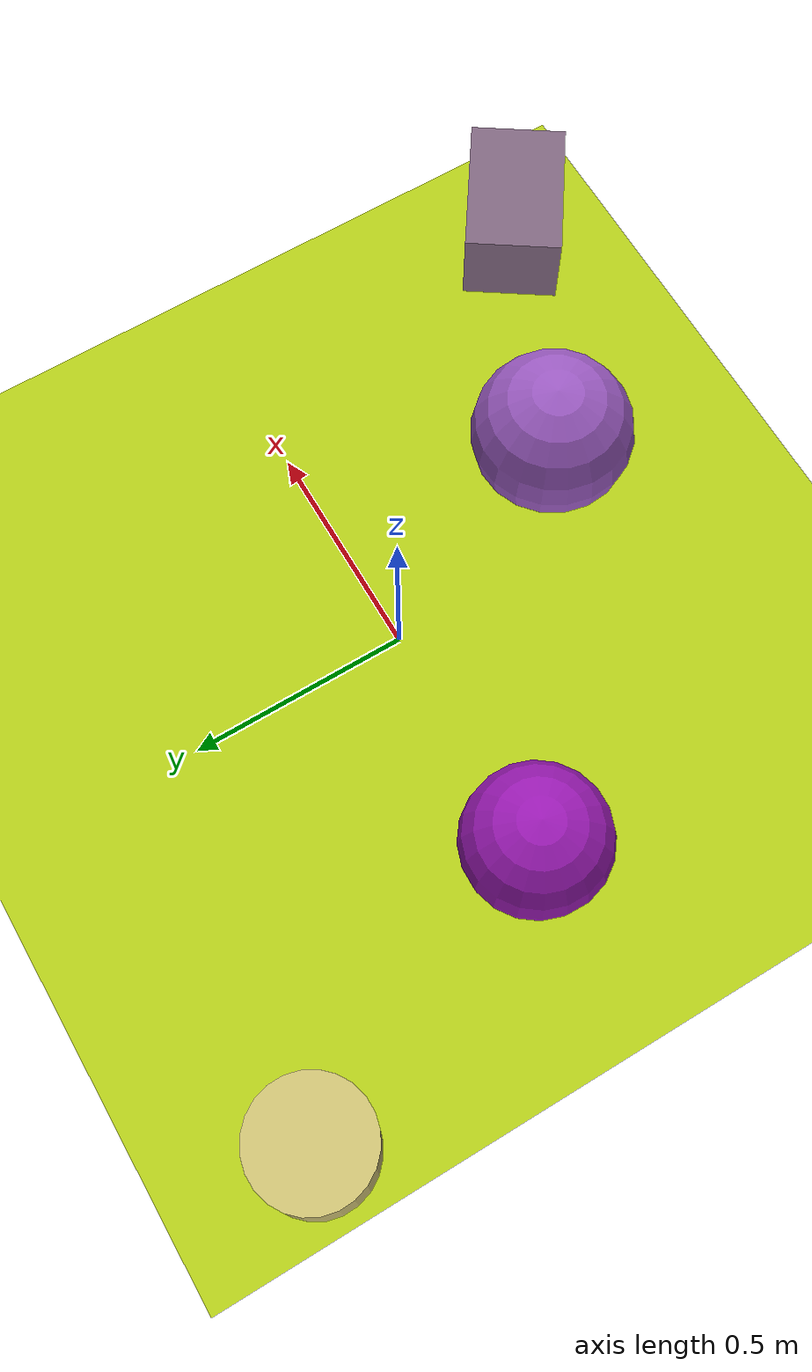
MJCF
<mujoco>
   <asset>
<texture type="skybox" builtin="gradient" rgb1="0.9 0.1 0.5" rgb2="0.5 0.6 0.0" width="256" height="256"/>
<texture name="checker_0" builtin="checker" rgb1="1.0 0.9 0.6" rgb2="0.6 0.6 0.3" width="200" height="200"/>
<texture name="checker_1" builtin="checker" rgb1="0.9 0.4 0.5" rgb2="0.1 0.4 0.5" width="200" height="200"/>
<texture name="flat_2" builtin="flat" rgb1="0.6 0.1 0.7" rgb2="0.6 0.1 0.7"  width="200" height="200"/>
<texture name="checker_3" builtin="checker" rgb1="0.4 0.7 0.8" rgb2="0.8 0.0 0.7" width="200" height="200"/><material name="checker_0_mat" reflectance="0" texrepeat="3 3" texture="checker_0" texuniform="false" />
<material name="checker_1_mat" reflectance="0" texrepeat="3 3" texture="checker_1" texuniform="false" />
<material name="flat_2_mat" reflectance="0" texture="flat_2" texuniform="true"/>
<material name="checker_3_mat" reflectance="0" texrepeat="5 5" texture="checker_3" texuniform="false" />
   </asset>

   <worldbody>
      <light diffuse=".9 .9 .9" pos="0 0 3" dir="0 0 -1"/>
     <geom type="plane" size="1 1 0.1" rgba="0.7 0.8 0.1 1"/>
<geom type="cylinder" pos="-0.84 0.68 0.12" size="0.13 0.12 0.12" material="checker_0_mat" euler="0 0 24" />
<geom type="box" pos="0.76 -0.76 0.1" size="0.11 0.16 0.1" material="checker_1_mat" euler="0 0 56" />
<geom type="sphere" pos="-0.56 0.01 0.16" size="0.16 0.16 0.16" material="flat_2_mat" euler="0 0 80" />
<geom type="sphere" pos="0.19 -0.5 0.18" size="0.18 0.18 0.18" material="checker_3_mat" euler="0 0 14" /><camera euler="60 0 180" fovy="60" name="camera1" pos="-0.2 -1.5 1"></camera>   </worldbody>
</mujoco>
